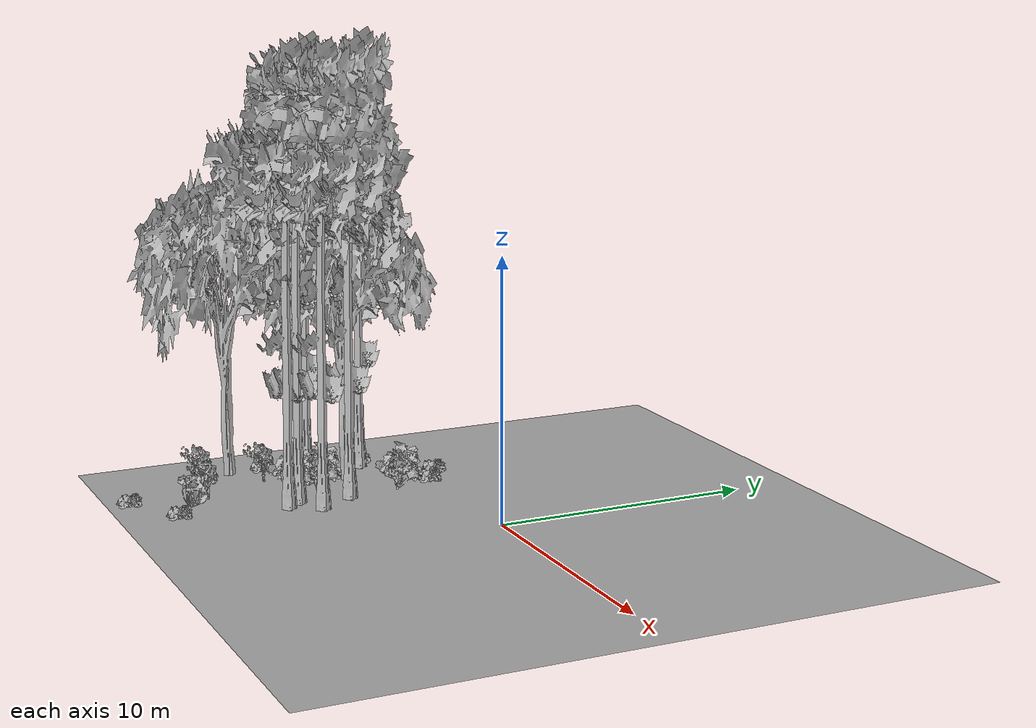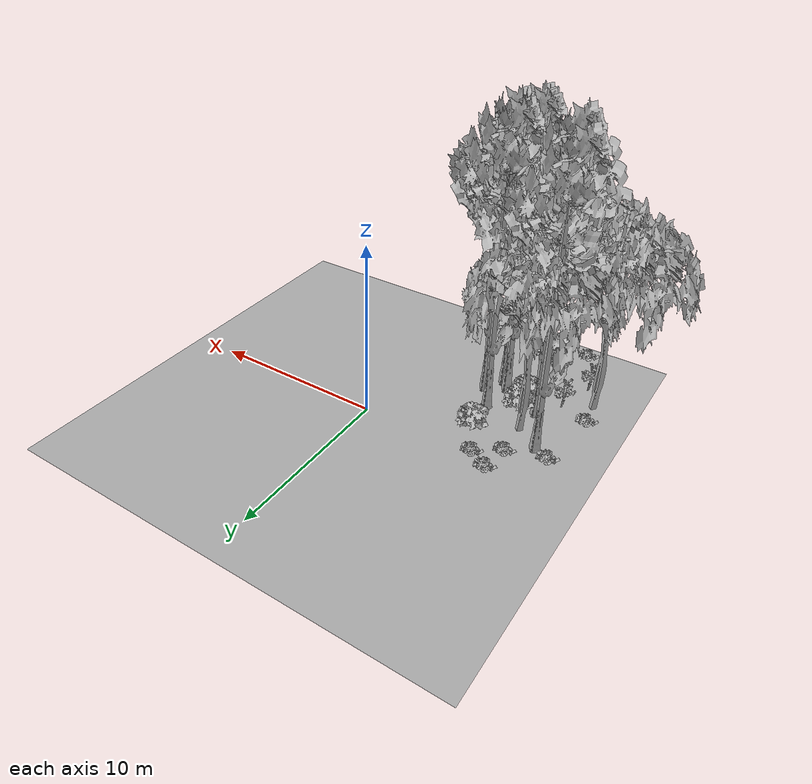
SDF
<sdf version="1.7">
 <world name="default">
  <model name="ground_plane">
   <static>1</static>
   <link name="link">
    <collision name="collision">
     <pose>-50 0 0 0 -0 0</pose>
     <geometry><plane><normal>0 0 1</normal><size>80 80</size></plane></geometry>
     <surface><contact><ode><min_depth>0.01</min_depth><max_vel>0</max_vel></ode></contact></surface>
    </collision>
    <visual name="grass">
     <cast_shadows>0</cast_shadows>
     <geometry>
      <mesh>
       <scale>0.46714285714285714 0.46714285714285714 0.1</scale>
       <uri>file://grass_plane/meshes/grass_plane.dae</uri>
      </mesh>
     </geometry>
    </visual>
   </link>
  </model>
  <model name="Tree 6">
   <static>1</static>
   <pose>-10.306124599277059 -7.160687915453316 0 1.57079 -0 0</pose>
   <link name="link">
    <collision name="collision">
     <geometry><mesh><scale>3.5 5 3.5</scale><uri>model://tree_2/meshes/tree_2.obj</uri></mesh></geometry>
    </collision>
    <visual name="visual">
     <geometry><mesh><scale>3.5 5 3.5</scale><uri>model://tree_2/meshes/tree_2.obj</uri></mesh></geometry>
    </visual>
   </link>
  </model>
  <model name="Tree 11">
   <static>1</static>
   <pose>-9.012206593976291 -2.0977632748779484 0 1.57079 -0 0</pose>
   <link name="link">
    <collision name="collision">
     <geometry><mesh><scale>3.5 5 3.5</scale><uri>model://tree_9/meshes/tree_9.obj</uri></mesh></geometry>
    </collision>
    <visual name="visual">
     <geometry><mesh><scale>3.5 5 3.5</scale><uri>model://tree_9/meshes/tree_9.obj</uri></mesh></geometry>
    </visual>
   </link>
  </model>
  <model name="Tree 21">
   <static>1</static>
   <pose>-5.556242086556814 -5.873186874767839 0 1.57079 -0 0</pose>
   <link name="link">
    <collision name="collision">
     <geometry><mesh><scale>3.5 5 3.5</scale><uri>model://tree_9/meshes/tree_9.obj</uri></mesh></geometry>
    </collision>
    <visual name="visual">
     <geometry><mesh><scale>3.5 5 3.5</scale><uri>model://tree_9/meshes/tree_9.obj</uri></mesh></geometry>
    </visual>
   </link>
  </model>
  <model name="Tree 128">
   <static>1</static>
   <pose>-7.83480782843143 -4.743440576106799 0 1.57079 -0 0</pose>
   <link name="link">
    <collision name="collision">
     <geometry><mesh><scale>3.5 5 3.5</scale><uri>model://tree_9/meshes/tree_9.obj</uri></mesh></geometry>
    </collision>
    <visual name="visual">
     <geometry><mesh><scale>3.5 5 3.5</scale><uri>model://tree_9/meshes/tree_9.obj</uri></mesh></geometry>
    </visual>
   </link>
  </model>
  <model name="Tree 167">
   <static>1</static>
   <pose>-5.107725689700864 -6.422130603245051 0 1.57079 -0 0</pose>
   <link name="link">
    <collision name="collision">
     <geometry><mesh><scale>3.5 5 3.5</scale><uri>model://tree_9/meshes/tree_9.obj</uri></mesh></geometry>
    </collision>
    <visual name="visual">
     <geometry><mesh><scale>3.5 5 3.5</scale><uri>model://tree_9/meshes/tree_9.obj</uri></mesh></geometry>
    </visual>
   </link>
  </model>
  <model name="Tree 207">
   <static>1</static>
   <pose>-4.456351750544648 -5.30165020904397 0 1.57079 -0 0</pose>
   <link name="link">
    <collision name="collision">
     <geometry><mesh><scale>3.5 5 3.5</scale><uri>model://tree_9/meshes/tree_9.obj</uri></mesh></geometry>
    </collision>
    <visual name="visual">
     <geometry><mesh><scale>3.5 5 3.5</scale><uri>model://tree_9/meshes/tree_9.obj</uri></mesh></geometry>
    </visual>
   </link>
  </model>
  <model name="Tree 244">
   <static>1</static>
   <pose>-5.31497249950111 -3.9078963747012168 0 1.57079 -0 0</pose>
   <link name="link">
    <collision name="collision">
     <geometry><mesh><scale>3.5 5 3.5</scale><uri>model://tree_9/meshes/tree_9.obj</uri></mesh></geometry>
    </collision>
    <visual name="visual">
     <geometry><mesh><scale>3.5 5 3.5</scale><uri>model://tree_9/meshes/tree_9.obj</uri></mesh></geometry>
    </visual>
   </link>
  </model>
  <model name="Tree 526">
   <static>1</static>
   <pose>-7.746880627433637 -3.1923641181774087 0 1.57079 -0 0</pose>
   <link name="link">
    <collision name="collision">
     <geometry><mesh><scale>3.5 5 3.5</scale><uri>model://tree_2/meshes/tree_2.obj</uri></mesh></geometry>
    </collision>
    <visual name="visual">
     <geometry><mesh><scale>3.5 5 3.5</scale><uri>model://tree_2/meshes/tree_2.obj</uri></mesh></geometry>
    </visual>
   </link>
  </model>
  <model name="Bush 150">
   <static>1</static>
   <pose>-6.920171980824676 -4.672898189049718 0 1.57079 -0 0</pose>
   <link name="link">
    <collision name="collision">
     <geometry><mesh><scale>2 2 2</scale><uri>model://bush_1/meshes/bush_1.obj</uri></mesh></geometry>
     <surface><contact><collide_without_contact>false</collide_without_contact></contact></surface>
    </collision>
    <visual name="visual">
     <geometry><mesh><scale>2 2 2</scale><uri>model://bush_1/meshes/bush_1.obj</uri></mesh></geometry>
    </visual>
   </link>
  </model>
  <model name="Bush 158">
   <static>1</static>
   <pose>-7.453944894486156 0.4681798407472968 0 1.57079 -0 0</pose>
   <link name="link">
    <collision name="collision">
     <geometry><mesh><scale>2 2 2</scale><uri>model://bush_2/meshes/bush_2.obj</uri></mesh></geometry>
     <surface><contact><collide_without_contact>false</collide_without_contact></contact></surface>
    </collision>
    <visual name="visual">
     <geometry><mesh><scale>2 2 2</scale><uri>model://bush_2/meshes/bush_2.obj</uri></mesh></geometry>
    </visual>
   </link>
  </model>
  <model name="Bush 180">
   <static>1</static>
   <pose>-9.830812502571149 -1.811903056990019 0 1.57079 -0 0</pose>
   <link name="link">
    <collision name="collision">
     <geometry><mesh><scale>2 2 2</scale><uri>model://bush_2/meshes/bush_2.obj</uri></mesh></geometry>
     <surface><contact><collide_without_contact>false</collide_without_contact></contact></surface>
    </collision>
    <visual name="visual">
     <geometry><mesh><scale>2 2 2</scale><uri>model://bush_2/meshes/bush_2.obj</uri></mesh></geometry>
    </visual>
   </link>
  </model>
  <model name="Bush 215">
   <static>1</static>
   <pose>-8.14060465029078 -11.720154059344345 0 1.57079 -0 0</pose>
   <link name="link">
    <collision name="collision">
     <geometry><mesh><scale>2 2 2</scale><uri>model://bush_2/meshes/bush_2.obj</uri></mesh></geometry>
     <surface><contact><collide_without_contact>false</collide_without_contact></contact></surface>
    </collision>
    <visual name="visual">
     <geometry><mesh><scale>2 2 2</scale><uri>model://bush_2/meshes/bush_2.obj</uri></mesh></geometry>
    </visual>
   </link>
  </model>
  <model name="Bush 248">
   <static>1</static>
   <pose>-7.7286227065096895 -1.1580252688291353 0 1.57079 -0 0</pose>
   <link name="link">
    <collision name="collision">
     <geometry><mesh><scale>2 2 2</scale><uri>model://bush_2/meshes/bush_2.obj</uri></mesh></geometry>
     <surface><contact><collide_without_contact>false</collide_without_contact></contact></surface>
    </collision>
    <visual name="visual">
     <geometry><mesh><scale>2 2 2</scale><uri>model://bush_2/meshes/bush_2.obj</uri></mesh></geometry>
    </visual>
   </link>
  </model>
  <model name="Bush 252">
   <static>1</static>
   <pose>-7.521707006544048 -8.82805715357869 0 1.57079 -0 0</pose>
   <link name="link">
    <collision name="collision">
     <geometry><mesh><scale>2 2 2</scale><uri>model://bush_5/meshes/bush_5.obj</uri></mesh></geometry>
     <surface><contact><collide_without_contact>false</collide_without_contact></contact></surface>
    </collision>
    <visual name="visual">
     <geometry><mesh><scale>2 2 2</scale><uri>model://bush_5/meshes/bush_5.obj</uri></mesh></geometry>
    </visual>
   </link>
  </model>
  <model name="Bush 286">
   <static>1</static>
   <pose>-8.748123137972492 -6.20209171239587 0 1.57079 -0 0</pose>
   <link name="link">
    <collision name="collision">
     <geometry><mesh><scale>2 2 2</scale><uri>model://bush_5/meshes/bush_5.obj</uri></mesh></geometry>
     <surface><contact><collide_without_contact>false</collide_without_contact></contact></surface>
    </collision>
    <visual name="visual">
     <geometry><mesh><scale>2 2 2</scale><uri>model://bush_5/meshes/bush_5.obj</uri></mesh></geometry>
    </visual>
   </link>
  </model>
  <model name="Bush 404">
   <static>1</static>
   <pose>-6.344584642937853 -0.21327760279015706 0 1.57079 -0 0</pose>
   <link name="link">
    <collision name="collision">
     <geometry><mesh><scale>2 2 2</scale><uri>model://bush_2/meshes/bush_2.obj</uri></mesh></geometry>
     <surface><contact><collide_without_contact>false</collide_without_contact></contact></surface>
    </collision>
    <visual name="visual">
     <geometry><mesh><scale>2 2 2</scale><uri>model://bush_2/meshes/bush_2.obj</uri></mesh></geometry>
    </visual>
   </link>
  </model>
  <model name="Bush 406">
   <static>1</static>
   <pose>-9.391056339083903 -8.510128930713439 0 1.57079 -0 0</pose>
   <link name="link">
    <collision name="collision">
     <geometry><mesh><scale>2 2 2</scale><uri>model://bush_5/meshes/bush_5.obj</uri></mesh></geometry>
     <surface><contact><collide_without_contact>false</collide_without_contact></contact></surface>
    </collision>
    <visual name="visual">
     <geometry><mesh><scale>2 2 2</scale><uri>model://bush_5/meshes/bush_5.obj</uri></mesh></geometry>
    </visual>
   </link>
  </model>
  <model name="Bush 412">
   <static>1</static>
   <pose>-6.895457230163398 -5.76298522933574 0 1.57079 -0 0</pose>
   <link name="link">
    <collision name="collision">
     <geometry><mesh><scale>2 2 2</scale><uri>model://bush_1/meshes/bush_1.obj</uri></mesh></geometry>
     <surface><contact><collide_without_contact>false</collide_without_contact></contact></surface>
    </collision>
    <visual name="visual">
     <geometry><mesh><scale>2 2 2</scale><uri>model://bush_1/meshes/bush_1.obj</uri></mesh></geometry>
    </visual>
   </link>
  </model>
  <model name="Bush 539">
   <static>1</static>
   <pose>-6.917436584313943 -9.644481681544505 0 1.57079 -0 0</pose>
   <link name="link">
    <collision name="collision">
     <geometry><mesh><scale>2 2 2</scale><uri>model://bush_4/meshes/bush_4.obj</uri></mesh></geometry>
     <surface><contact><collide_without_contact>false</collide_without_contact></contact></surface>
    </collision>
    <visual name="visual">
     <geometry><mesh><scale>2 2 2</scale><uri>model://bush_4/meshes/bush_4.obj</uri></mesh></geometry>
    </visual>
   </link>
  </model>
  <model name="Bush 551">
   <static>1</static>
   <pose>-10.344980908068084 -5.748431639271814 0 1.57079 -0 0</pose>
   <link name="link">
    <collision name="collision">
     <geometry><mesh><scale>2 2 2</scale><uri>model://bush_2/meshes/bush_2.obj</uri></mesh></geometry>
     <surface><contact><collide_without_contact>false</collide_without_contact></contact></surface>
    </collision>
    <visual name="visual">
     <geometry><mesh><scale>2 2 2</scale><uri>model://bush_2/meshes/bush_2.obj</uri></mesh></geometry>
    </visual>
   </link>
  </model>
  <model name="Bush 619">
   <static>1</static>
   <pose>-5.954331987558895 -10.413858188234741 0 1.57079 -0 0</pose>
   <link name="link">
    <collision name="collision">
     <geometry><mesh><scale>2 2 2</scale><uri>model://bush_2/meshes/bush_2.obj</uri></mesh></geometry>
     <surface><contact><collide_without_contact>false</collide_without_contact></contact></surface>
    </collision>
    <visual name="visual">
     <geometry><mesh><scale>2 2 2</scale><uri>model://bush_2/meshes/bush_2.obj</uri></mesh></geometry>
    </visual>
   </link>
  </model>
  <model name="Bush 635">
   <static>1</static>
   <pose>-5.624419774485602 -1.842370559900914 0 1.57079 -0 0</pose>
   <link name="link">
    <collision name="collision">
     <geometry><mesh><scale>2 2 2</scale><uri>model://bush_1/meshes/bush_1.obj</uri></mesh></geometry>
     <surface><contact><collide_without_contact>false</collide_without_contact></contact></surface>
    </collision>
    <visual name="visual">
     <geometry><mesh><scale>2 2 2</scale><uri>model://bush_1/meshes/bush_1.obj</uri></mesh></geometry>
    </visual>
   </link>
  </model>
 </world>
</sdf>
